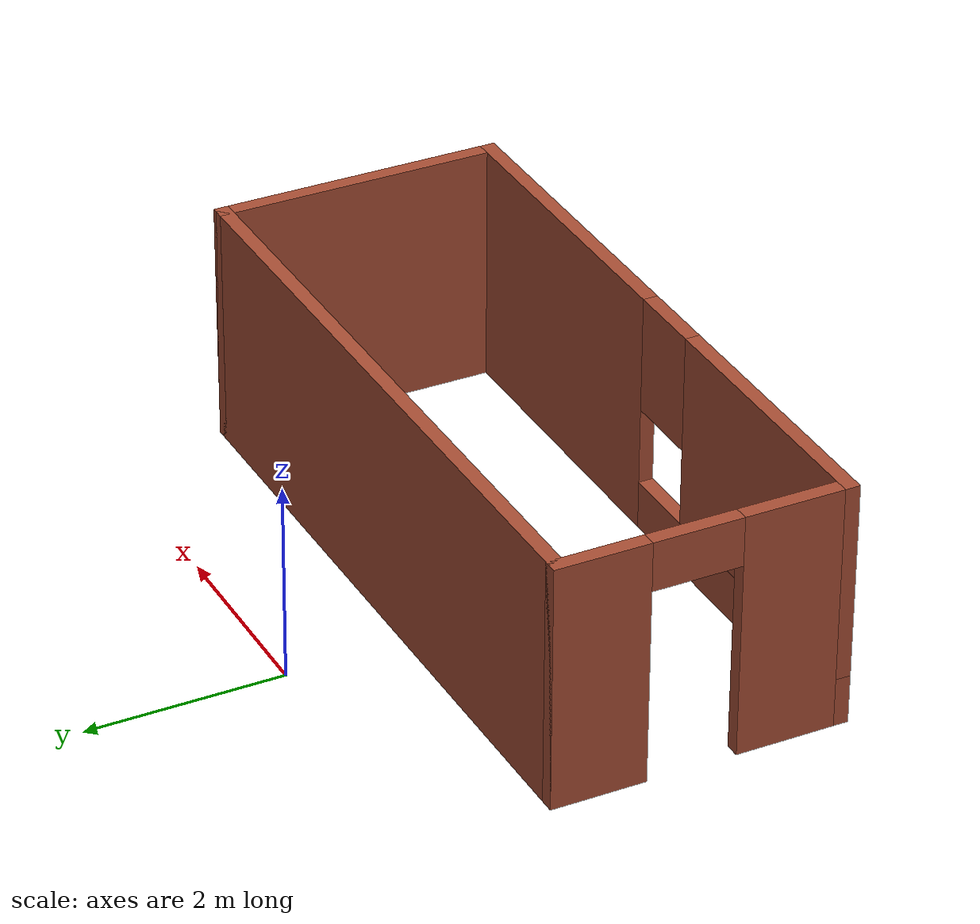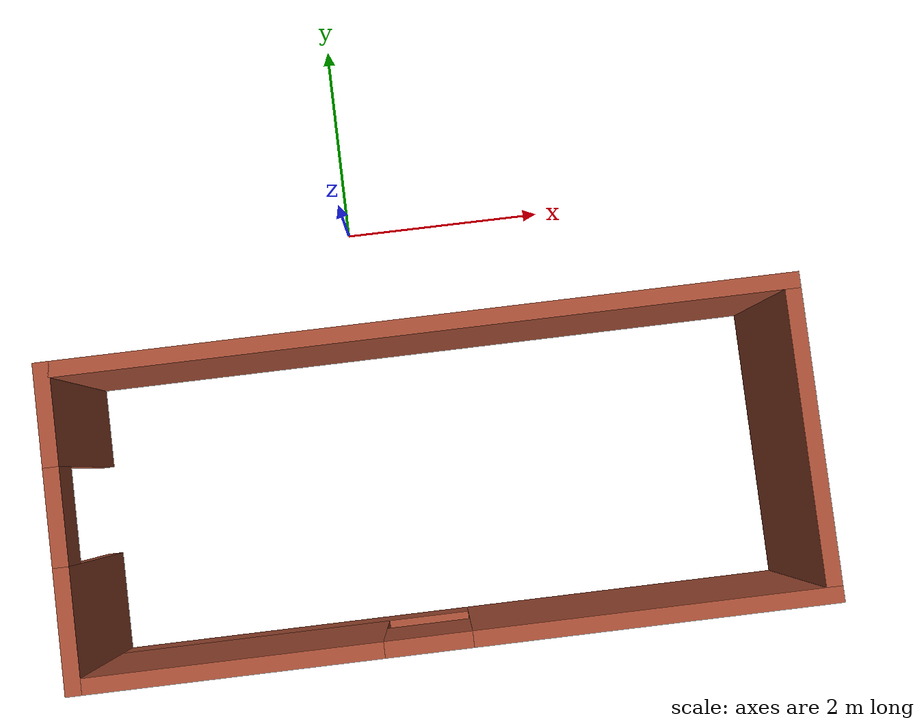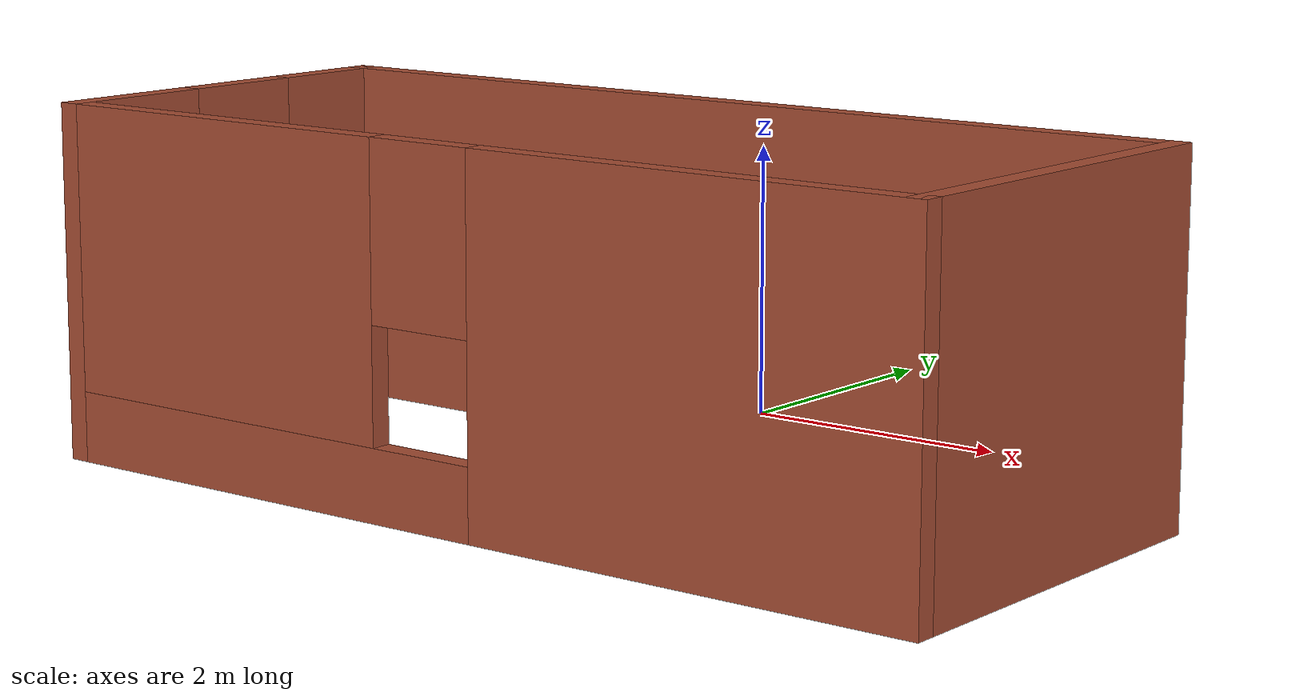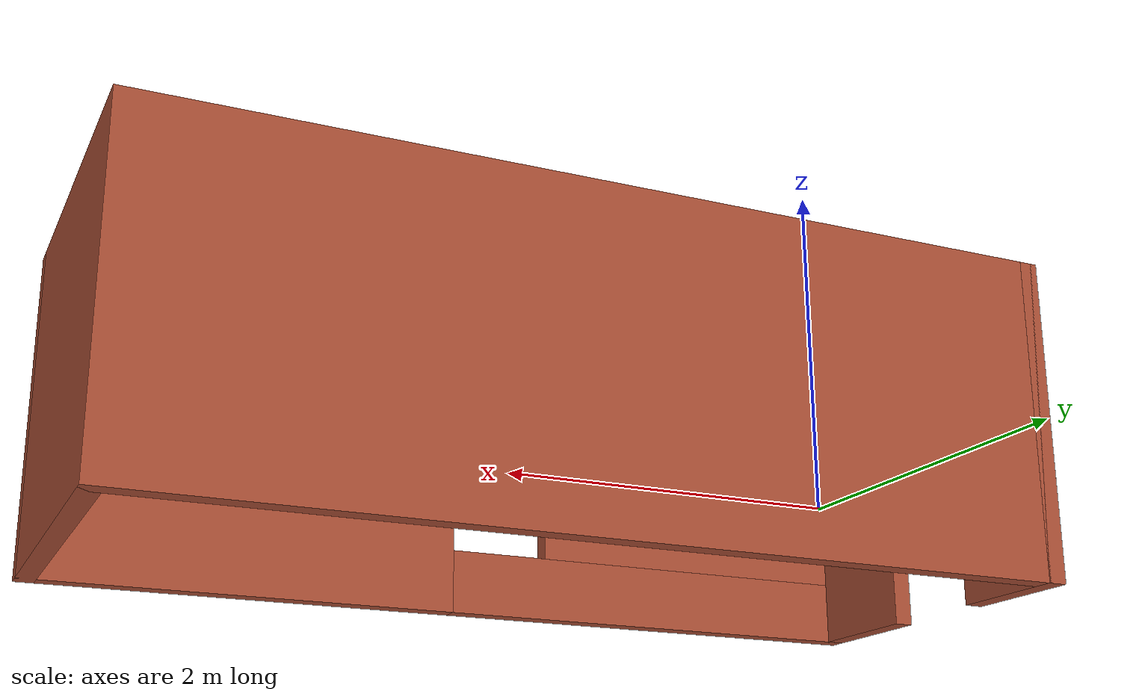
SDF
<?xml version='1.0'?>
<sdf version='1.6'>
  <model name='office_model'>
    <pose frame=''>0.605 -2.685 0 0 -0 0</pose>
    <link name='Wall_0'>
      <collision name='Wall_0_Collision'>
        <geometry>
          <box>
            <size>7 0.15 2.5</size>
          </box>
        </geometry>
        <pose frame=''>0 0 1.25 0 -0 0</pose>
      </collision>
      <visual name='Wall_0_Visual'>
        <pose frame=''>0 0 1.25 0 -0 0</pose>
        <geometry>
          <box>
            <size>7 0.15 2.5</size>
          </box>
        </geometry>
        <material>
          <script>
            <uri>file://media/materials/scripts/gazebo.material</uri>
            <name>Gazebo/Bricks</name>
          </script>
          <ambient>1 1 1 1</ambient>
        </material>
        <meta>
          <layer>0</layer>
        </meta>
      </visual>
      <pose frame=''>0 1.425 0 0 -0 0</pose>
    </link>
    <link name='Wall_1'>
      <collision name='Wall_1_Collision'>
        <geometry>
          <box>
            <size>3 0.15 2.5</size>
          </box>
        </geometry>
        <pose frame=''>0 0 1.25 0 -0 0</pose>
      </collision>
      <visual name='Wall_1_Visual'>
        <pose frame=''>0 0 1.25 0 -0 0</pose>
        <geometry>
          <box>
            <size>3 0.15 2.5</size>
          </box>
        </geometry>
        <material>
          <script>
            <uri>file://media/materials/scripts/gazebo.material</uri>
            <name>Gazebo/Bricks</name>
          </script>
          <ambient>1 1 1 1</ambient>
        </material>
        <meta>
          <layer>0</layer>
        </meta>
      </visual>
      <pose frame=''>3.425 0 0 0 0 -1.5708</pose>
    </link>
    <link name='Wall_2'>
      <pose frame=''>0 -1.425 0 0 -0 3.14159</pose>
      <visual name='Wall_2_Visual_0'>
        <pose frame=''>-1.8325 0 1.25 0 -0 0</pose>
        <geometry>
          <box>
            <size>3.335 0.15 2.5</size>
          </box>
        </geometry>
        <material>
          <script>
            <uri>file://media/materials/scripts/gazebo.material</uri>
            <name>Gazebo/Bricks</name>
          </script>
          <ambient>1 1 1 1</ambient>
        </material>
        <meta>
          <layer>0</layer>
        </meta>
      </visual>
      <collision name='Wall_2_Collision_0'>
        <geometry>
          <box>
            <size>3.335 0.15 2.5</size>
          </box>
        </geometry>
        <pose frame=''>-1.8325 0 1.25 0 -0 0</pose>
      </collision>
      <visual name='Wall_2_Visual_1'>
        <pose frame=''>1.6675 0 0.25 0 -0 0</pose>
        <geometry>
          <box>
            <size>3.665 0.15 0.5</size>
          </box>
        </geometry>
        <material>
          <script>
            <uri>file://media/materials/scripts/gazebo.material</uri>
            <name>Gazebo/Bricks</name>
          </script>
          <ambient>1 1 1 1</ambient>
        </material>
        <meta>
          <layer>0</layer>
        </meta>
      </visual>
      <collision name='Wall_2_Collision_1'>
        <geometry>
          <box>
            <size>3.665 0.15 0.5</size>
          </box>
        </geometry>
        <pose frame=''>1.6675 0 0.25 0 -0 0</pose>
      </collision>
      <visual name='Wall_2_Visual_2'>
        <pose frame=''>2.0675 0 1.5 0 -0 0</pose>
        <geometry>
          <box>
            <size>2.865 0.15 2</size>
          </box>
        </geometry>
        <material>
          <script>
            <uri>file://media/materials/scripts/gazebo.material</uri>
            <name>Gazebo/Bricks</name>
          </script>
          <ambient>1 1 1 1</ambient>
        </material>
        <meta>
          <layer>0</layer>
        </meta>
      </visual>
      <collision name='Wall_2_Collision_2'>
        <geometry>
          <box>
            <size>2.865 0.15 2</size>
          </box>
        </geometry>
        <pose frame=''>2.0675 0 1.5 0 -0 0</pose>
      </collision>
      <visual name='Wall_2_Visual_3'>
        <pose frame=''>0.235 0 1.9 0 -0 0</pose>
        <geometry>
          <box>
            <size>0.8 0.15 1.2</size>
          </box>
        </geometry>
        <material>
          <script>
            <uri>file://media/materials/scripts/gazebo.material</uri>
            <name>Gazebo/Bricks</name>
          </script>
          <ambient>1 1 1 1</ambient>
        </material>
        <meta>
          <layer>0</layer>
        </meta>
      </visual>
      <collision name='Wall_2_Collision_3'>
        <geometry>
          <box>
            <size>0.8 0.15 1.2</size>
          </box>
        </geometry>
        <pose frame=''>0.235 0 1.9 0 -0 0</pose>
      </collision>
    </link>
    <link name='Wall_3'>
      <pose frame=''>-3.425 0 0 0 -0 1.5708</pose>
      <visual name='Wall_3_Visual_0'>
        <pose frame=''>-0.9275 0 1.25 0 -0 0</pose>
        <geometry>
          <box>
            <size>1.145 0.15 2.5</size>
          </box>
        </geometry>
        <material>
          <script>
            <uri>file://media/materials/scripts/gazebo.material</uri>
            <name>Gazebo/Bricks</name>
          </script>
          <ambient>1 1 1 1</ambient>
        </material>
        <meta>
          <layer>0</layer>
        </meta>
      </visual>
      <collision name='Wall_3_Collision_0'>
        <geometry>
          <box>
            <size>1.145 0.15 2.5</size>
          </box>
        </geometry>
        <pose frame=''>-0.9275 0 1.25 0 -0 0</pose>
      </collision>
      <visual name='Wall_3_Visual_1'>
        <pose frame=''>1.0225 0 1.25 0 -0 0</pose>
        <geometry>
          <box>
            <size>0.955 0.15 2.5</size>
          </box>
        </geometry>
        <material>
          <script>
            <uri>file://media/materials/scripts/gazebo.material</uri>
            <name>Gazebo/Bricks</name>
          </script>
          <ambient>1 1 1 1</ambient>
        </material>
        <meta>
          <layer>0</layer>
        </meta>
      </visual>
      <collision name='Wall_3_Collision_1'>
        <geometry>
          <box>
            <size>0.955 0.15 2.5</size>
          </box>
        </geometry>
        <pose frame=''>1.0225 0 1.25 0 -0 0</pose>
      </collision>
      <visual name='Wall_3_Visual_2'>
        <pose frame=''>0.095 0 2.25 0 -0 0</pose>
        <geometry>
          <box>
            <size>0.9 0.15 0.5</size>
          </box>
        </geometry>
        <material>
          <script>
            <uri>file://media/materials/scripts/gazebo.material</uri>
            <name>Gazebo/Bricks</name>
          </script>
          <ambient>1 1 1 1</ambient>
        </material>
        <meta>
          <layer>0</layer>
        </meta>
      </visual>
      <collision name='Wall_3_Collision_2'>
        <geometry>
          <box>
            <size>0.9 0.15 0.5</size>
          </box>
        </geometry>
        <pose frame=''>0.095 0 2.25 0 -0 0</pose>
      </collision>
    </link>
    <static>1</static>
  </model>
</sdf>
